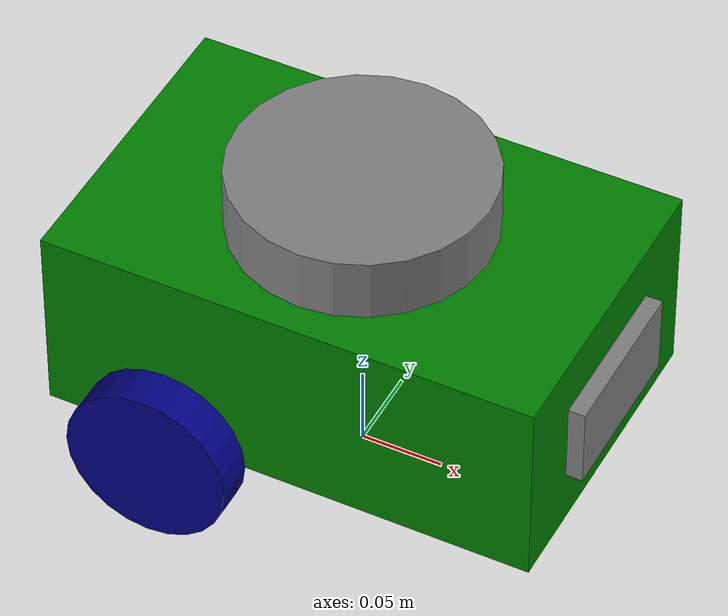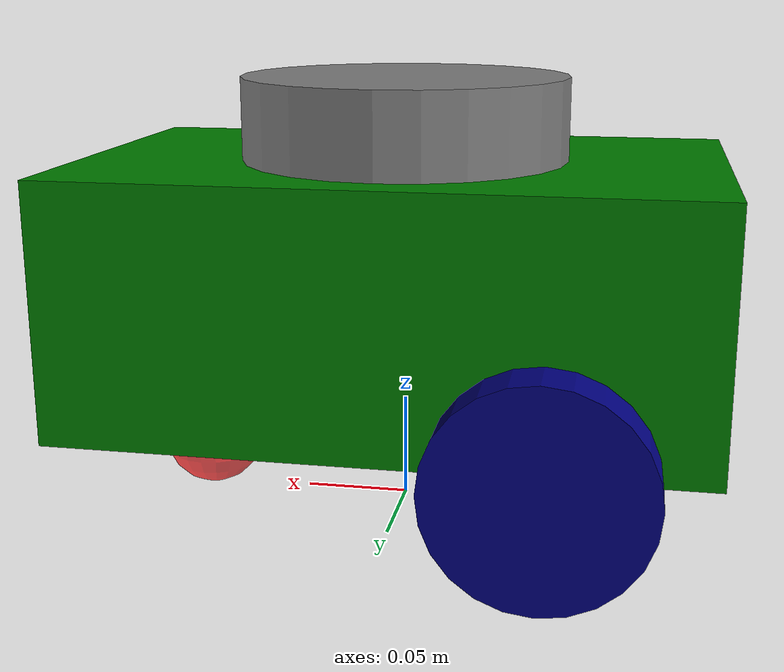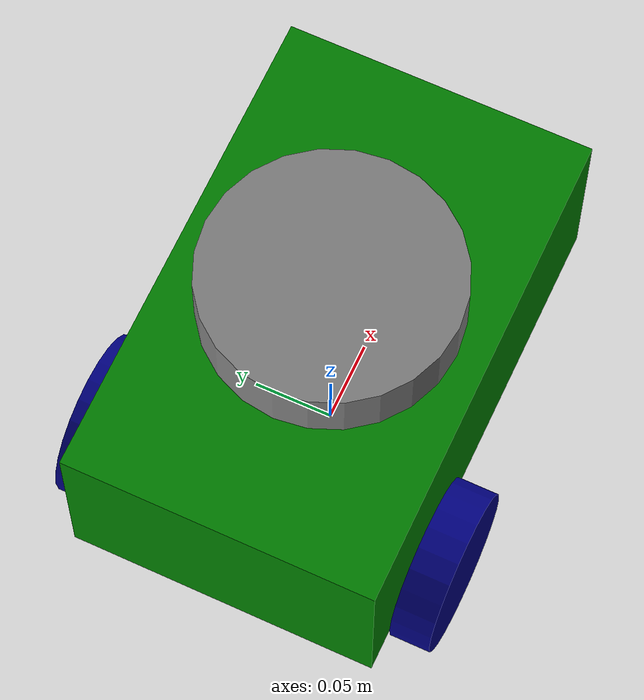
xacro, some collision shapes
<?xml version="1.0" encoding="UTF-8"?>
<robot name ="thien_robot" xmlns:xacro="http://www.ros.org/wiki/xacro">
    <xacro:include filename="common_properties.xacro"/>
    <xacro:include filename="robot_base.xacro"/>
    <xacro:include filename="lidar.xacro"/>
    <xacro:include filename="camera.xacro"/>
</robot>

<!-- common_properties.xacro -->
<robot xmlns:xacro="http://www.ros.org/wiki/xacro">
    <!-- Define color -->
    <material name="green">
        <color rgba="0 0.5 0 1" />
    </material>
    <material name="blue">
        <color rgba="0 0 0.5 1" />
    </material>
    <material name="grey">
        <color rgba="0.5 0.5 0.5 1" />
    </material>
    <material name="red">
        <color rgba="1 0 0 0.7" />
    </material>
    <material name="dark">
        <color rgba="0.5 0.5 0.5 1" />
    </material>
    <!-- Define inertial -->
  <xacro:macro name="box_inertia" params="m l w h xyz rpy">
    <inertial>
      <origin xyz="${xyz}" rpy="${rpy}" />
      <mass value="${m}" />
      <inertia ixx="${(m/12)*(h*h + l*l)}" ixy="0" ixz="0"
               iyy="${(m/12)*(w*w + l*l)}" iyz="0"
               izz="${(m/12)*(h*h + w*w)}" />
    </inertial>
  </xacro:macro>

  <xacro:macro name="cylinder_inertia" params="m h r xyz rpy">
    <inertial>
      <origin xyz="${xyz}" rpy="${rpy}" />
      <mass value="${m}" />
      <inertia ixx="${(m/12)*(3*r*r + h*h)}" ixy="0" ixz="0"
               iyy="${(m/12)*(3*r*r + h*h)}" iyz="0"
               izz="${(m/2)*r*r}" />
    </inertial>
  </xacro:macro>

  <xacro:macro name="shpere_inertia" params="m r xyz rpy">
    <inertial>
      <origin xyz="${xyz}" rpy="${rpy}" />
      <mass value="${m}" />
      <inertia ixx="${(2/5)*m*r*r}" ixy="0" ixz="0"
               iyy="${(2/5)*m*r*r}" iyz="0"
               izz="${(2/5)*m*r*r}" />
    </inertial>
  </xacro:macro>
</robot>

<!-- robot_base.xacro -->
<robot xmlns:xacro="http://www.ros.org/wiki/xacro">
    <!-- var using xacro-->
    <xacro:property name="base_length" value="0.3" />
    <xacro:property name="base_width" value="0.19" />
    <xacro:property name="base_height" value="0.12" />
    <xacro:property name="wheel_radius" value="0.05" />
    <xacro:property name="wheel_length" value="0.025" />
    <xacro:property name="upper_base_length" value="0.4" />
    <xacro:property name="upper_base_width" value="0.4" />
    <xacro:property name="upper_base_height" value="0.8"/>
    <!-- Define links -->
    <link name="base_footprint" />

    <link name="base_link">
        <visual>
            <geometry>
                <box size="${base_length} ${base_width} ${base_height}" />
            </geometry>
            <origin xyz="0 0 ${base_height/2.0}" rpy="0 0 0" />
            <material name="green" />
        </visual>

        <collision>
            <geometry>
                <box size="${base_length} ${base_width} ${base_height}" />
            </geometry>
            <origin xyz="0 0 ${base_height/2.0}" rpy="0 0 0" />
            <material name="green" />
        </collision>

        <xacro:box_inertia m="5.0" l="${base_length}" w="${base_width}" h="${base_height}"
            xyz="0 0 ${base_height/2.0}" rpy="0 0 0" />
    </link>

    <!--Function
    with xacro-->
    <link name="left_wheel_link">
            <visual>
                <geometry>
                    <cylinder radius="${wheel_radius}" length="${wheel_length}" />
                </geometry>
                <origin xyz="0 0 0" rpy="${pi/2.0} 0 0" />
                <material name="blue" />
            </visual>

            <collision>
                <geometry>
                    <cylinder radius="${wheel_radius}" length="${wheel_length}" />
                </geometry>
                <origin xyz="0 0 0" rpy="${pi/2.0} 0 0" />
            </collision>
            <xacro:cylinder_inertia m="1.0" h="${wheel_length}" r="${wheel_radius}"
                xyz="0 0 0" rpy="${pi/2.0} 0 0" />
    </link>
     <link name="right_wheel_link">
            <visual>
                <geometry>
                    <cylinder radius="${wheel_radius}" length="${wheel_length}" />
                </geometry>
                <origin xyz="0 0 0" rpy="${pi/2.0} 0 0" />
                <material name="blue" />
            </visual>

            <collision>
                <geometry>
                    <cylinder radius="${wheel_radius}" length="${wheel_length}" />
                </geometry>
                <origin xyz="0 0 0" rpy="${pi/2.0} 0 0" />
            </collision>
            <xacro:cylinder_inertia m="1.0" h="${wheel_length}" r="${wheel_radius}"
                xyz="0 0 0" rpy="${pi/2.0} 0 0" />
    </link>

    <!-- Use the macro to create wheel links -->

    <link name="caster_wheel_link">
        <visual>
            <geometry>
                <sphere radius="${wheel_radius / 2.0}" />
            </geometry>
            <origin xyz="0 0 0" rpy="0 0 0" />
            <material name="red" />
        </visual>
        <collision>
            <geometry>
                <sphere radius="${wheel_radius / 2.0}" />
            </geometry>
            <origin xyz="0 0 0" rpy="0 0 0" />
        </collision>
        <xacro:shpere_inertia m="5.0" r="${wheel_radius / 2.0}"
            xyz="0 0 0" rpy="0 0 0" />
    </link>

    <!-- Define joints -->
    <joint name="base_joint" type="fixed">
        <parent link="base_footprint" />
        <child link="base_link" />
        <origin xyz="0 0 ${wheel_radius}" rpy="0 0 0" />
    </joint>

    <joint name="base_right_wheel_joint" type="continuous">
        <parent link="base_link" />
        <child link="right_wheel_link" />
        <origin xyz="${-base_length / 4.0} ${-(base_width + wheel_length) / 2.0 } 0" rpy="0 0 0" />
        <axis xyz="0 1 0" />
    </joint>

    <joint name="base_left_wheel_joint" type="continuous">
        <parent link="base_link" />
        <child link="left_wheel_link" />
        <origin xyz="${-base_length / 4.0} ${(base_width + wheel_length) / 2.0 } 0" rpy="0 0 0" />
        <axis xyz="0 1 0" />
    </joint>

    <joint name="base_caster_wheel_joint" type="fixed">
        <parent link="base_link" />
        <child link="caster_wheel_link" />
        <origin xyz="${base_length / 3.0} 0 ${-wheel_radius / 2.0}" rpy="0 0 0" />
        <axis xyz="0 1 0" />
    </joint>

</robot>

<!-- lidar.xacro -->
<robot xmlns:xacro="http://www.ros.org/wiki/xacro">
    <xacro:property name="lidar_height" value="0.077" />
    <xacro:property name="lidar_radius" value="0.039" />

    <!-- Include lidar -->
    <link name="laser_link">
        <visual>
            <geometry>
                <mesh filename="file://$(find robot_description)/mesh/sensors/lds.stl"/>
            </geometry>
            <origin xyz="0 0 ${lidar_height/4}" rpy="0 0 0" />
            <material name="grey" />
        </visual>
        <collision>
            <geometry>
                <cylinder radius="${lidar_height}" length="${lidar_radius}" />
            </geometry>
            <origin xyz="0 0 ${lidar_height/4}" rpy="0 0 0" />
            <material name="grey" />
        </collision>
    </link>

    <joint name="laser_joint" type="fixed">
        <parent link="base_link" />
        <child link="laser_link" />
        <origin xyz="0 0 ${base_height}" rpy="0 0 0" />
    </joint>

</robot>

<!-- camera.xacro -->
<robot xmlns:xacro="http://www.ros.org/wiki/xacro">

    <xacro:property name="camera_height" value="0.05" />
    <xacro:property name="camera_length" value="0.01" />
    <xacro:property name="camera_width" value="0.1" />
    <link name="camera_link">
        <visual>
            <geometry>
                <box size="${camera_length} ${camera_width} ${camera_height}" />
            </geometry>
            <material name="grey" />
        </visual>
        <collision>
            <geometry>
                <box size="${camera_length} ${camera_width} ${camera_height}" />
            </geometry>
        </collision>
        <xacro:box_inertia m="0.1" l="${camera_length}" w="${camera_width}" h="${camera_height}"
            xyz="0 0 0" rpy="0 0 0" />
    </link>

    <joint name="base_camera_joint" type="fixed">
        <parent link="base_link" />
        <child link="camera_link" />
        <origin xyz="${(base_length + camera_length)/2.0 } 0 ${base_height/2.0}" rpy="0 0 0" />
    </joint>
</robot>
